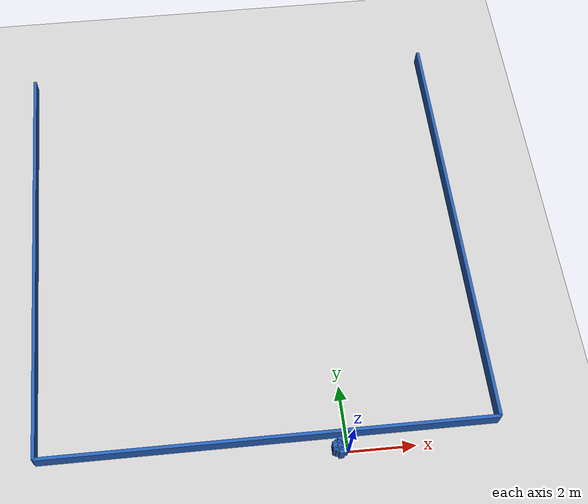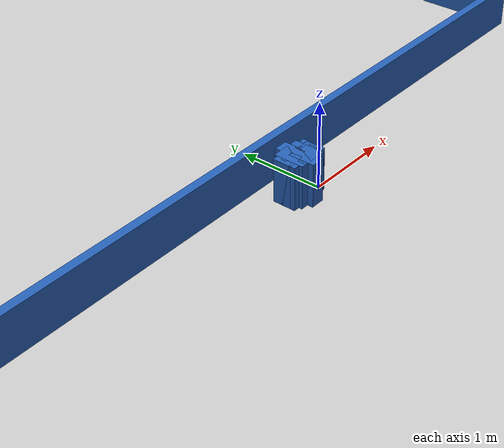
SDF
<?xml version="1.0" ?>
    <sdf version="1.5">
      <world name="default">
        <!-- A global light source -->
        <include>
          <uri>model://sun</uri>
        </include>
        <!-- A ground plane -->
        <include>
          <uri>model://ground_plane</uri>
        </include>

    <model name='libopen_space_final_T2B_77_58'>
      <static>1</static>
      <pose frame=''>-0.225000 0.075000 0.000000 0.000000 0.000000 0.000000</pose>
      <link name='link'>
        <inertial>
          <mass>1</mass>
          <inertia>
            <ixx>0.145833</ixx>
            <ixy>0</ixy>
            <ixz>0</ixz>
            <iyy>0.145833</iyy>
            <iyz>0</iyz>
            <izz>0.125</izz>
          </inertia>
        </inertial>
        <collision name='collision'>
          <geometry>
            <box>
              <size>0.16 0.48 1</size>
            </box>
          </geometry>
          <max_contacts>10</max_contacts>
          <surface>
            <contact>
              <ode/>
            </contact>
            <bounce/>
            <friction>
              <torsional>
                <ode/>
              </torsional>
              <ode/>
            </friction>
          </surface>
        </collision>
        <visual name='visual'>
          <geometry>
            <box>
              <size>0.16 0.48 1</size>
            </box>
          </geometry>
	    <material>
              <ambient>0.152000 0.379000 0.720000 1</ambient>
	      <diffuse>0.152000 0.379000 0.720000 1</diffuse>
          </material>
          <material>
            <script>
              <name>Gazebo/Grey</name>
              <uri>file://media/materials/scripts/gazebo.material</uri>
            </script>
          </material>
        </visual>
        <self_collide>0</self_collide>
        <kinematic>0</kinematic>
        <gravity>1</gravity>
      </link>
      <plugin name='libopen_space_final_T2B_77_58' filename='libopen_space_final_T2B_77_58.so'/>
    </model>

    <model name='libopen_space_final_T2B_57_10'>
      <static>1</static>
      <pose frame=''>-0.225000 0.075000 0.000000 0.000000 0.000000 0.000000</pose>
      <link name='link'>
        <inertial>
          <mass>1</mass>
          <inertia>
            <ixx>0.145833</ixx>
            <ixy>0</ixy>
            <ixz>0</ixz>
            <iyy>0.145833</iyy>
            <iyz>0</iyz>
            <izz>0.125</izz>
          </inertia>
        </inertial>
        <collision name='collision'>
          <geometry>
            <box>
              <size>0.45 0.15 1</size>
            </box>
          </geometry>
          <max_contacts>10</max_contacts>
          <surface>
            <contact>
              <ode/>
            </contact>
            <bounce/>
            <friction>
              <torsional>
                <ode/>
              </torsional>
              <ode/>
            </friction>
          </surface>
        </collision>
        <visual name='visual'>
          <geometry>
            <box>
              <size>0.45 0.15 1</size>
            </box>
          </geometry>
	    <material>
              <ambient>0.152000 0.379000 0.720000 1</ambient>
	      <diffuse>0.152000 0.379000 0.720000 1</diffuse>
          </material>
          <material>
            <script>
              <name>Gazebo/Grey</name>
              <uri>file://media/materials/scripts/gazebo.material</uri>
            </script>
          </material>
        </visual>
        <self_collide>0</self_collide>
        <kinematic>0</kinematic>
        <gravity>1</gravity>
      </link>
      <plugin name='libopen_space_final_T2B_57_10' filename='libopen_space_final_T2B_57_10.so'/>
    </model>

    <model name='libopen_space_final_T2B_105_94'>
      <static>1</static>
      <pose frame=''>-0.225000 0.075000 0.000000 0.000000 0.000000 0.000000</pose>
      <link name='link'>
        <inertial>
          <mass>1</mass>
          <inertia>
            <ixx>0.145833</ixx>
            <ixy>0</ixy>
            <ixz>0</ixz>
            <iyy>0.145833</iyy>
            <iyz>0</iyz>
            <izz>0.125</izz>
          </inertia>
        </inertial>
        <collision name='collision'>
          <geometry>
            <box>
              <size>0.39 0.14 1</size>
            </box>
          </geometry>
          <max_contacts>10</max_contacts>
          <surface>
            <contact>
              <ode/>
            </contact>
            <bounce/>
            <friction>
              <torsional>
                <ode/>
              </torsional>
              <ode/>
            </friction>
          </surface>
        </collision>
        <visual name='visual'>
          <geometry>
            <box>
              <size>0.39 0.14 1</size>
            </box>
          </geometry>
	    <material>
              <ambient>0.152000 0.379000 0.720000 1</ambient>
	      <diffuse>0.152000 0.379000 0.720000 1</diffuse>
          </material>
          <material>
            <script>
              <name>Gazebo/Grey</name>
              <uri>file://media/materials/scripts/gazebo.material</uri>
            </script>
          </material>
        </visual>
        <self_collide>0</self_collide>
        <kinematic>0</kinematic>
        <gravity>1</gravity>
      </link>
      <plugin name='libopen_space_final_T2B_105_94' filename='libopen_space_final_T2B_105_94.so'/>
    </model>

    <model name='libopen_space_final_T2B_83_17'>
      <static>1</static>
      <pose frame=''>-0.225000 0.075000 0.000000 0.000000 0.000000 0.000000</pose>
      <link name='link'>
        <inertial>
          <mass>1</mass>
          <inertia>
            <ixx>0.145833</ixx>
            <ixy>0</ixy>
            <ixz>0</ixz>
            <iyy>0.145833</iyy>
            <iyz>0</iyz>
            <izz>0.125</izz>
          </inertia>
        </inertial>
        <collision name='collision'>
          <geometry>
            <box>
              <size>0.17 0.13 1</size>
            </box>
          </geometry>
          <max_contacts>10</max_contacts>
          <surface>
            <contact>
              <ode/>
            </contact>
            <bounce/>
            <friction>
              <torsional>
                <ode/>
              </torsional>
              <ode/>
            </friction>
          </surface>
        </collision>
        <visual name='visual'>
          <geometry>
            <box>
              <size>0.17 0.13 1</size>
            </box>
          </geometry>
	    <material>
              <ambient>0.152000 0.379000 0.720000 1</ambient>
	      <diffuse>0.152000 0.379000 0.720000 1</diffuse>
          </material>
          <material>
            <script>
              <name>Gazebo/Grey</name>
              <uri>file://media/materials/scripts/gazebo.material</uri>
            </script>
          </material>
        </visual>
        <self_collide>0</self_collide>
        <kinematic>0</kinematic>
        <gravity>1</gravity>
      </link>
      <plugin name='libopen_space_final_T2B_83_17' filename='libopen_space_final_T2B_83_17.so'/>
    </model>

    <model name='libopen_space_final_T2B_77_83'>
      <static>1</static>
      <pose frame=''>-0.225000 0.075000 0.000000 0.000000 0.000000 0.000000</pose>
      <link name='link'>
        <inertial>
          <mass>1</mass>
          <inertia>
            <ixx>0.145833</ixx>
            <ixy>0</ixy>
            <ixz>0</ixz>
            <iyy>0.145833</iyy>
            <iyz>0</iyz>
            <izz>0.125</izz>
          </inertia>
        </inertial>
        <collision name='collision'>
          <geometry>
            <box>
              <size>0.34 0.35 1</size>
            </box>
          </geometry>
          <max_contacts>10</max_contacts>
          <surface>
            <contact>
              <ode/>
            </contact>
            <bounce/>
            <friction>
              <torsional>
                <ode/>
              </torsional>
              <ode/>
            </friction>
          </surface>
        </collision>
        <visual name='visual'>
          <geometry>
            <box>
              <size>0.34 0.35 1</size>
            </box>
          </geometry>
	    <material>
              <ambient>0.152000 0.379000 0.720000 1</ambient>
	      <diffuse>0.152000 0.379000 0.720000 1</diffuse>
          </material>
          <material>
            <script>
              <name>Gazebo/Grey</name>
              <uri>file://media/materials/scripts/gazebo.material</uri>
            </script>
          </material>
        </visual>
        <self_collide>0</self_collide>
        <kinematic>0</kinematic>
        <gravity>1</gravity>
      </link>
      <plugin name='libopen_space_final_T2B_77_83' filename='libopen_space_final_T2B_77_83.so'/>
    </model>

    <model name='libopen_space_final_T2B_73_39'>
      <static>1</static>
      <pose frame=''>-0.225000 0.075000 0.000000 0.000000 0.000000 0.000000</pose>
      <link name='link'>
        <inertial>
          <mass>1</mass>
          <inertia>
            <ixx>0.145833</ixx>
            <ixy>0</ixy>
            <ixz>0</ixz>
            <iyy>0.145833</iyy>
            <iyz>0</iyz>
            <izz>0.125</izz>
          </inertia>
        </inertial>
        <collision name='collision'>
          <geometry>
            <box>
              <size>0.48 0.27 1</size>
            </box>
          </geometry>
          <max_contacts>10</max_contacts>
          <surface>
            <contact>
              <ode/>
            </contact>
            <bounce/>
            <friction>
              <torsional>
                <ode/>
              </torsional>
              <ode/>
            </friction>
          </surface>
        </collision>
        <visual name='visual'>
          <geometry>
            <box>
              <size>0.48 0.27 1</size>
            </box>
          </geometry>
	    <material>
              <ambient>0.152000 0.379000 0.720000 1</ambient>
	      <diffuse>0.152000 0.379000 0.720000 1</diffuse>
          </material>
          <material>
            <script>
              <name>Gazebo/Grey</name>
              <uri>file://media/materials/scripts/gazebo.material</uri>
            </script>
          </material>
        </visual>
        <self_collide>0</self_collide>
        <kinematic>0</kinematic>
        <gravity>1</gravity>
      </link>
      <plugin name='libopen_space_final_T2B_73_39' filename='libopen_space_final_T2B_73_39.so'/>
    </model>

    <model name='libopen_space_final_T2B_148_40'>
      <static>1</static>
      <pose frame=''>-0.225000 0.075000 0.000000 0.000000 0.000000 0.000000</pose>
      <link name='link'>
        <inertial>
          <mass>1</mass>
          <inertia>
            <ixx>0.145833</ixx>
            <ixy>0</ixy>
            <ixz>0</ixz>
            <iyy>0.145833</iyy>
            <iyz>0</iyz>
            <izz>0.125</izz>
          </inertia>
        </inertial>
        <collision name='collision'>
          <geometry>
            <box>
              <size>0.21 0.28 1</size>
            </box>
          </geometry>
          <max_contacts>10</max_contacts>
          <surface>
            <contact>
              <ode/>
            </contact>
            <bounce/>
            <friction>
              <torsional>
                <ode/>
              </torsional>
              <ode/>
            </friction>
          </surface>
        </collision>
        <visual name='visual'>
          <geometry>
            <box>
              <size>0.21 0.28 1</size>
            </box>
          </geometry>
	    <material>
              <ambient>0.152000 0.379000 0.720000 1</ambient>
	      <diffuse>0.152000 0.379000 0.720000 1</diffuse>
          </material>
          <material>
            <script>
              <name>Gazebo/Grey</name>
              <uri>file://media/materials/scripts/gazebo.material</uri>
            </script>
          </material>
        </visual>
        <self_collide>0</self_collide>
        <kinematic>0</kinematic>
        <gravity>1</gravity>
      </link>
      <plugin name='libopen_space_final_T2B_148_40' filename='libopen_space_final_T2B_148_40.so'/>
    </model>

    <model name='libopen_space_final_T2B_123_20'>
      <static>1</static>
      <pose frame=''>-0.225000 0.075000 0.000000 0.000000 0.000000 0.000000</pose>
      <link name='link'>
        <inertial>
          <mass>1</mass>
          <inertia>
            <ixx>0.145833</ixx>
            <ixy>0</ixy>
            <ixz>0</ixz>
            <iyy>0.145833</iyy>
            <iyz>0</iyz>
            <izz>0.125</izz>
          </inertia>
        </inertial>
        <collision name='collision'>
          <geometry>
            <box>
              <size>0.13 0.22 1</size>
            </box>
          </geometry>
          <max_contacts>10</max_contacts>
          <surface>
            <contact>
              <ode/>
            </contact>
            <bounce/>
            <friction>
              <torsional>
                <ode/>
              </torsional>
              <ode/>
            </friction>
          </surface>
        </collision>
        <visual name='visual'>
          <geometry>
            <box>
              <size>0.13 0.22 1</size>
            </box>
          </geometry>
	    <material>
              <ambient>0.152000 0.379000 0.720000 1</ambient>
	      <diffuse>0.152000 0.379000 0.720000 1</diffuse>
          </material>
          <material>
            <script>
              <name>Gazebo/Grey</name>
              <uri>file://media/materials/scripts/gazebo.material</uri>
            </script>
          </material>
        </visual>
        <self_collide>0</self_collide>
        <kinematic>0</kinematic>
        <gravity>1</gravity>
      </link>
      <plugin name='libopen_space_final_T2B_123_20' filename='libopen_space_final_T2B_123_20.so'/>
    </model>

    <model name='libopen_space_final_T2B_90_95'>
      <static>1</static>
      <pose frame=''>-0.225000 0.075000 0.000000 0.000000 0.000000 0.000000</pose>
      <link name='link'>
        <inertial>
          <mass>1</mass>
          <inertia>
            <ixx>0.145833</ixx>
            <ixy>0</ixy>
            <ixz>0</ixz>
            <iyy>0.145833</iyy>
            <iyz>0</iyz>
            <izz>0.125</izz>
          </inertia>
        </inertial>
        <collision name='collision'>
          <geometry>
            <box>
              <size>0.48 0.16 1</size>
            </box>
          </geometry>
          <max_contacts>10</max_contacts>
          <surface>
            <contact>
              <ode/>
            </contact>
            <bounce/>
            <friction>
              <torsional>
                <ode/>
              </torsional>
              <ode/>
            </friction>
          </surface>
        </collision>
        <visual name='visual'>
          <geometry>
            <box>
              <size>0.48 0.16 1</size>
            </box>
          </geometry>
	    <material>
              <ambient>0.152000 0.379000 0.720000 1</ambient>
	      <diffuse>0.152000 0.379000 0.720000 1</diffuse>
          </material>
          <material>
            <script>
              <name>Gazebo/Grey</name>
              <uri>file://media/materials/scripts/gazebo.material</uri>
            </script>
          </material>
        </visual>
        <self_collide>0</self_collide>
        <kinematic>0</kinematic>
        <gravity>1</gravity>
      </link>
      <plugin name='libopen_space_final_T2B_90_95' filename='libopen_space_final_T2B_90_95.so'/>
    </model>

    <model name='libopen_space_final_T2B_55_44'>
      <static>1</static>
      <pose frame=''>-0.225000 0.075000 0.000000 0.000000 0.000000 0.000000</pose>
      <link name='link'>
        <inertial>
          <mass>1</mass>
          <inertia>
            <ixx>0.145833</ixx>
            <ixy>0</ixy>
            <ixz>0</ixz>
            <iyy>0.145833</iyy>
            <iyz>0</iyz>
            <izz>0.125</izz>
          </inertia>
        </inertial>
        <collision name='collision'>
          <geometry>
            <box>
              <size>0.48 0.17 1</size>
            </box>
          </geometry>
          <max_contacts>10</max_contacts>
          <surface>
            <contact>
              <ode/>
            </contact>
            <bounce/>
            <friction>
              <torsional>
                <ode/>
              </torsional>
              <ode/>
            </friction>
          </surface>
        </collision>
        <visual name='visual'>
          <geometry>
            <box>
              <size>0.48 0.17 1</size>
            </box>
          </geometry>
	    <material>
              <ambient>0.152000 0.379000 0.720000 1</ambient>
	      <diffuse>0.152000 0.379000 0.720000 1</diffuse>
          </material>
          <material>
            <script>
              <name>Gazebo/Grey</name>
              <uri>file://media/materials/scripts/gazebo.material</uri>
            </script>
          </material>
        </visual>
        <self_collide>0</self_collide>
        <kinematic>0</kinematic>
        <gravity>1</gravity>
      </link>
      <plugin name='libopen_space_final_T2B_55_44' filename='libopen_space_final_T2B_55_44.so'/>
    </model>

    <model name='libopen_space_final_T2B_96_80'>
      <static>1</static>
      <pose frame=''>-0.225000 0.075000 0.000000 0.000000 0.000000 0.000000</pose>
      <link name='link'>
        <inertial>
          <mass>1</mass>
          <inertia>
            <ixx>0.145833</ixx>
            <ixy>0</ixy>
            <ixz>0</ixz>
            <iyy>0.145833</iyy>
            <iyz>0</iyz>
            <izz>0.125</izz>
          </inertia>
        </inertial>
        <collision name='collision'>
          <geometry>
            <box>
              <size>0.23 0.33 1</size>
            </box>
          </geometry>
          <max_contacts>10</max_contacts>
          <surface>
            <contact>
              <ode/>
            </contact>
            <bounce/>
            <friction>
              <torsional>
                <ode/>
              </torsional>
              <ode/>
            </friction>
          </surface>
        </collision>
        <visual name='visual'>
          <geometry>
            <box>
              <size>0.23 0.33 1</size>
            </box>
          </geometry>
	    <material>
              <ambient>0.152000 0.379000 0.720000 1</ambient>
	      <diffuse>0.152000 0.379000 0.720000 1</diffuse>
          </material>
          <material>
            <script>
              <name>Gazebo/Grey</name>
              <uri>file://media/materials/scripts/gazebo.material</uri>
            </script>
          </material>
        </visual>
        <self_collide>0</self_collide>
        <kinematic>0</kinematic>
        <gravity>1</gravity>
      </link>
      <plugin name='libopen_space_final_T2B_96_80' filename='libopen_space_final_T2B_96_80.so'/>
    </model>

        <model name='bottom_wall'>
          <static>1</static>
          <pose frame=''>-2.25 0.5 0.000000 0.000000 0.000000 1.57079632</pose>
          <link name='link'>
            <inertial>
            <mass>1</mass>
            <inertia>
              <ixx>0.145833</ixx>
              <ixy>0</ixy>
              <ixz>0</ixz>
              <iyy>0.145833</iyy>
              <iyz>0</iyz>
              <izz>0.125</izz>
            </inertia>
            </inertial>
            <collision name='collision'>
            <geometry>
              <box>
              <size>0.1 13.5 1</size>
              </box>
            </geometry>
            <max_contacts>10</max_contacts>
            <surface>
              <contact>
              <ode/>
              </contact>
              <bounce/>
              <friction>
              <torsional>
                <ode/>
              </torsional>
              <ode/>
              </friction>
            </surface>
            </collision>
            <visual name='visual'>
            <geometry>
              <box>
              <size>0.1 13.5 1</size>
              </box>
            </geometry>
            <material>
              <ambient>0.152000 0.379000 0.720000 1</ambient>
            <diffuse>0.152000 0.379000 0.720000 1</diffuse>
            </material>
            <material>
              <script>
              <name>Gazebo/Grey</name>
              <uri>file://media/materials/scripts/gazebo.material</uri>
              </script>
            </material>
            </visual>
            <self_collide>0</self_collide>
            <kinematic>0</kinematic>
            <gravity>1</gravity>
          </link>
        </model>

        <model name='left_wall'>
          <static>1</static>
          <pose frame=''>-9 7.25 0.000000 0.000000 0.000000 0.000000</pose>
          <link name='link'>
            <inertial>
            <mass>1</mass>
            <inertia>
              <ixx>0.145833</ixx>
              <ixy>0</ixy>
              <ixz>0</ixz>
              <iyy>0.145833</iyy>
              <iyz>0</iyz>
              <izz>0.125</izz>
            </inertia>
            </inertial>
            <collision name='collision'>
            <geometry>
              <box>
              <size>0.1 13.5 1</size>
              </box>
            </geometry>
            <max_contacts>10</max_contacts>
            <surface>
              <contact>
              <ode/>
              </contact>
              <bounce/>
              <friction>
              <torsional>
                <ode/>
              </torsional>
              <ode/>
              </friction>
            </surface>
            </collision>
            <visual name='visual'>
            <geometry>
              <box>
              <size>0.1 13.5 1</size>
              </box>
            </geometry>
            <material>
              <ambient>0.152000 0.379000 0.720000 1</ambient>
            <diffuse>0.152000 0.379000 0.720000 1</diffuse>
            </material>
            <material>
              <script>
              <name>Gazebo/Grey</name>
              <uri>file://media/materials/scripts/gazebo.material</uri>
              </script>
            </material>
            </visual>
            <self_collide>0</self_collide>
            <kinematic>0</kinematic>
            <gravity>1</gravity>
          </link>
        </model>

        <model name='right_wall'>
          <static>1</static>
          <pose frame=''>4.5 7.25 0.000000 0.000000 0.000000 0.000000</pose>
          <link name='link'>
            <inertial>
            <mass>1</mass>
            <inertia>
              <ixx>0.145833</ixx>
              <ixy>0</ixy>
              <ixz>0</ixz>
              <iyy>0.145833</iyy>
              <iyz>0</iyz>
              <izz>0.125</izz>
            </inertia>
            </inertial>
            <collision name='collision'>
            <geometry>
              <box>
              <size>0.1 13.5 1</size>
              </box>
            </geometry>
            <max_contacts>10</max_contacts>
            <surface>
              <contact>
              <ode/>
              </contact>
              <bounce/>
              <friction>
              <torsional>
                <ode/>
              </torsional>
              <ode/>
              </friction>
            </surface>
            </collision>
            <visual name='visual'>
            <geometry>
              <box>
              <size>0.1 13.5 1</size>
              </box>
            </geometry>
            <material>
              <ambient>0.152000 0.379000 0.720000 1</ambient>
            <diffuse>0.152000 0.379000 0.720000 1</diffuse>
            </material>
            <material>
              <script>
              <name>Gazebo/Grey</name>
              <uri>file://media/materials/scripts/gazebo.material</uri>
              </script>
            </material>
            </visual>
            <self_collide>0</self_collide>
            <kinematic>0</kinematic>
            <gravity>1</gravity>
          </link>
        </model>

      </world>
    </sdf>"
